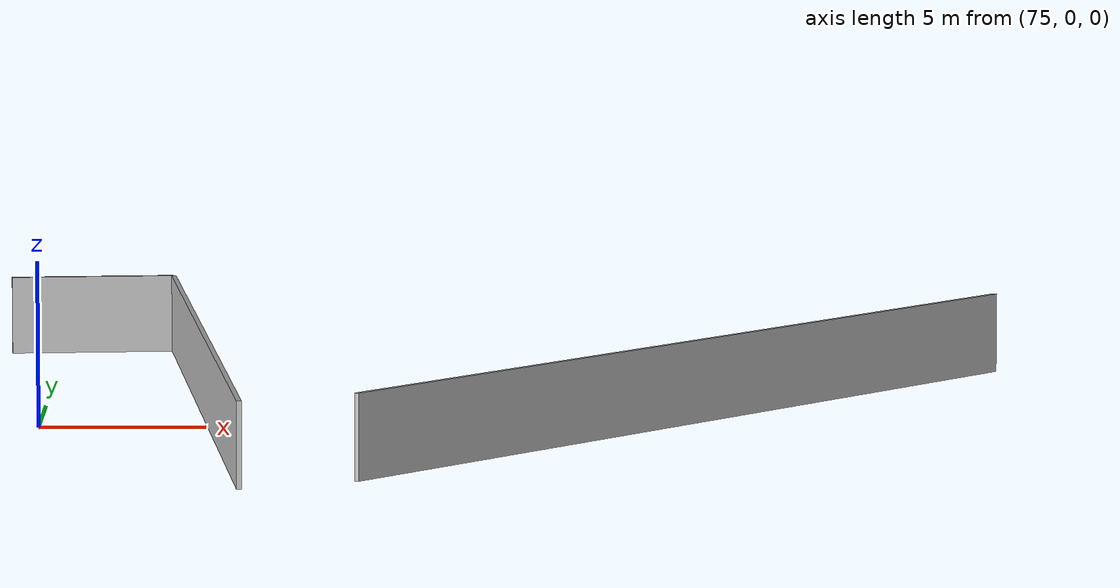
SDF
<?xml version="1.0" ?>
<sdf version="1.6">
  <model name="sps_2006">
    <pose frame="">0 0 0 0 -0 0</pose>
    <static>1</static>
    <self_collide>0</self_collide>
    <allow_auto_disable>0</allow_auto_disable>
    <link name="Wall64">
      <kinematic>0</kinematic>
      <gravity>1</gravity>
      <self_collide>0</self_collide>
      <collision name="collision">
        <geometry>
          <box>
            <size>31.7361 0.15 2.5</size>
          </box>
        </geometry>
        <pose frame="">0 0 0 0 -0 0</pose>
      </collision>
      <visual name="visual">
        <geometry>
          <box>
            <size>31.7361 0.15 2.5</size>
          </box>
        </geometry>
        <pose frame="">0 0 0 0 -0 0</pose>
        <cast_shadows>1</cast_shadows>
        <transparency>0.0</transparency>
      </visual>
      <pose frame="">94.7284 0.587272 1.25 0 0 -2.2738</pose>
    </link>
    <link name="Wall1394">
      <kinematic>0</kinematic>
      <gravity>1</gravity>
      <self_collide>0</self_collide>
      <collision name="collision">
        <geometry>
          <box>
            <size>5.303 0.15 2.5</size>
          </box>
        </geometry>
        <pose frame="">0 0 0 0 -0 0</pose>
      </collision>
      <visual name="visual">
        <geometry>
          <box>
            <size>5.303 0.15 2.5</size>
          </box>
        </geometry>
        <pose frame="">0 0 0 0 -0 0</pose>
        <cast_shadows>1</cast_shadows>
        <transparency>0.0</transparency>
      </visual>
      <pose frame="">75.9141 18.5812 1.25 0 -0 0.0823403</pose>
    </link>
    <link name="Wall1395">
      <kinematic>0</kinematic>
      <gravity>1</gravity>
      <self_collide>0</self_collide>
      <collision name="collision">
        <geometry>
          <box>
            <size>31.9786 0.15 2.5</size>
          </box>
        </geometry>
        <pose frame="">0 0 0 0 -0 0</pose>
      </collision>
      <visual name="visual">
        <geometry>
          <box>
            <size>31.9786 0.15 2.5</size>
          </box>
        </geometry>
        <pose frame="">0 0 0 0 -0 0</pose>
        <cast_shadows>1</cast_shadows>
        <transparency>0.0</transparency>
      </visual>
      <pose frame="">79.8722 2.86418 1.25 0 0 -1.48842</pose>
    </link>
  </model>
</sdf>
